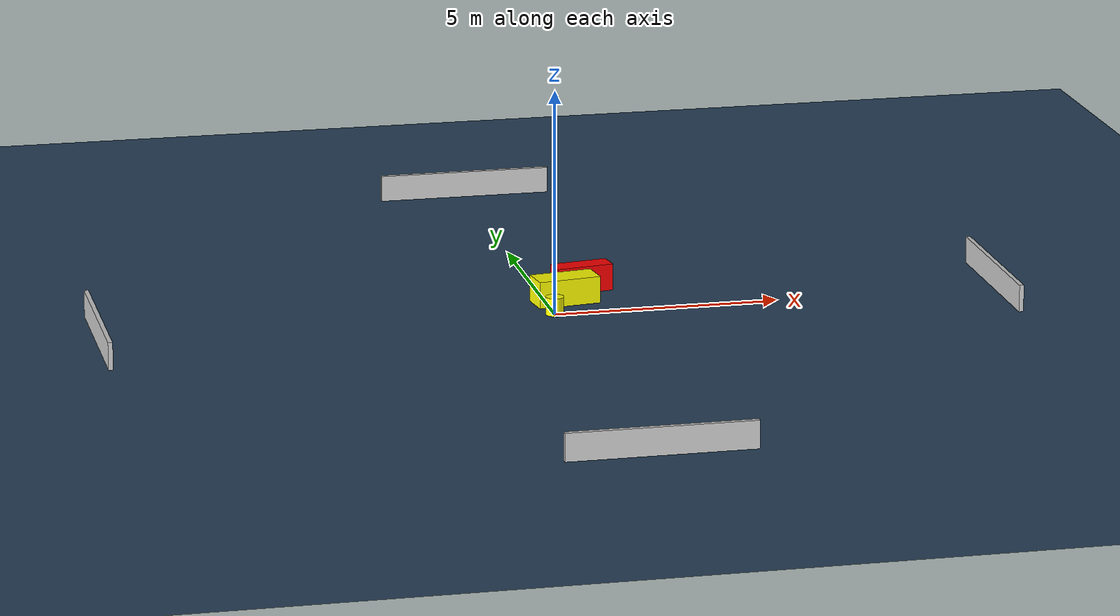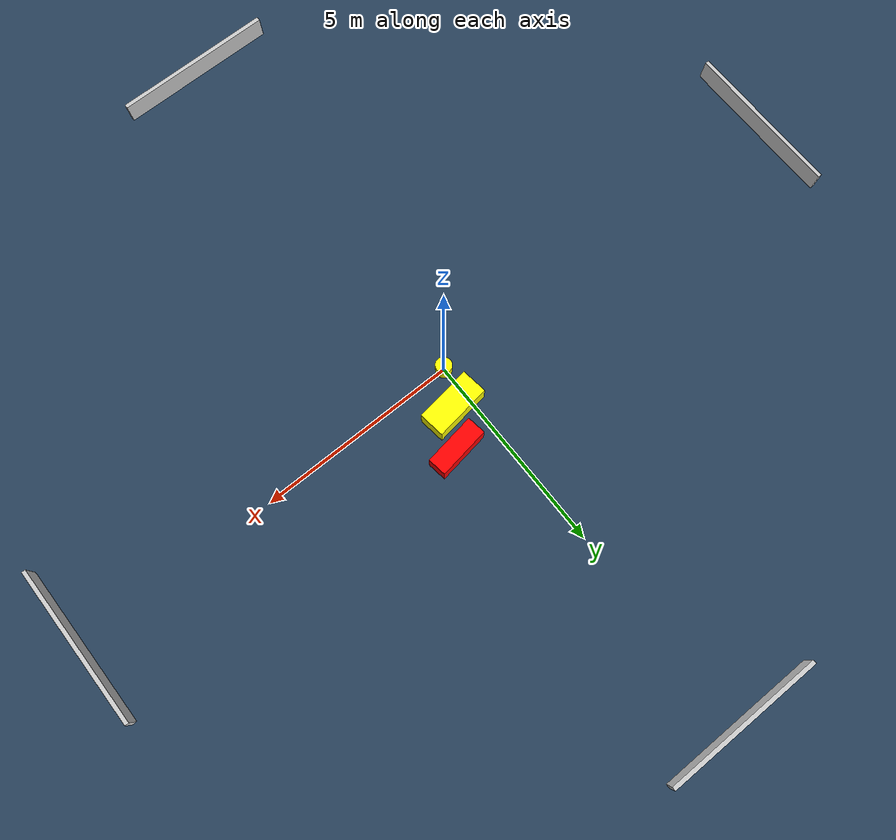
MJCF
<?xml version="1.0" ?>
<mujoco model="generated_environment">
  <option timestep="0.01" integrator="RK4" cone="elliptic"/>
  <default>
    <geom density="1"/>
  </default>
  <asset>
    <texture builtin="gradient" height="3072" name="skybox" rgb1="0.3 0.5 0.7" rgb2="0 0 0" type="skybox" width="512"/>
    <texture builtin="checker" height="300" name="groundplane" rgb1="0.2 0.3 0.4" rgb2="0.1 0.2 0.3" type="2d" width="300"/>
    <material name="groundplane" reflectance="0.2" texrepeat="5 5" texture="groundplane"/>
  </asset>
  <worldbody>
    <light dir="0 0 -1" directional="true" pos="0 0 1.5"/>
    <geom condim="3" friction="0.5 0.005 0.001" material="groundplane" name="floor" pos="0 0 0" size="0 0 0.05" type="plane"/>
    <body name="walls">
      <geom name="wall_1" condim="4" pos="-10.0 0.0 0.3" rgba="0.800000011920929 0.800000011920929 0.800000011920929 1.0" size="0.05 2.0 0.3" type="box"/>
      <geom name="wall_2" condim="4" pos="10.0 0.0 0.3" rgba="0.800000011920929 0.800000011920929 0.800000011920929 1.0" size="0.05 2.0 0.3" type="box"/>
      <geom name="wall_3" condim="4" pos="0.0 -10.0 0.3" rgba="0.800000011920929 0.800000011920929 0.800000011920929 1.0" size="2.0 0.05 0.3" type="box"/>
      <geom name="wall_4" condim="4" pos="0.0 10.0 0.3" rgba="0.800000011920929 0.800000011920929 0.800000011920929 1.0" size="2.0 0.05 0.3" type="box"/>
    </body>
    <body name="robot">
      <joint name="joint_x" type="slide" pos="0 0 0" axis="1 0 0"/>
      <joint name="joint_y" type="slide" pos="0 0 0" axis="0 1 0"/>
      <geom name="robot" type="cylinder" pos="0.0 0.0 0.2" size="0.2 0.2 0.0" mass="5.0" friction="1.0 0.005 0.0001" condim="4" rgba="1.0 1.0 0.0 1.0"/>
    </body>
    <body name="obstacle_1_movable">
      <geom name="obstacle_1_movable" condim="4" pos="0.42684197717995515 0.8694671805200588 0.3" euler="0 0 187.96862688650202" friction="0.0 0.005 0.001" rgba="1.0 1.0 0.0 1.0" size="0.707050739726669 0.3203447768739693 0.3" type="box" mass="0.1"/>
      <joint type="free"/>
    </body>
    <body name="obstacle_2_static">
      <geom name="obstacle_2_static" condim="4" pos="0.9814461629958781 1.6939900434839474 0.3" euler="0 0 98.51784070134514" friction="0.0 0.005 0.001" rgba="1.0 0.0 0.0 1.0" size="0.23458088016475154 0.6539336939512637 0.3" type="box"/>
    </body>
  </worldbody>
  <actuator>
    <motor name="actuator_x" joint="joint_x" gear="1" ctrlrange="-1 1"/>
    <motor name="actuator_y" joint="joint_y" gear="1" ctrlrange="-1 1"/>
  </actuator>
</mujoco>
